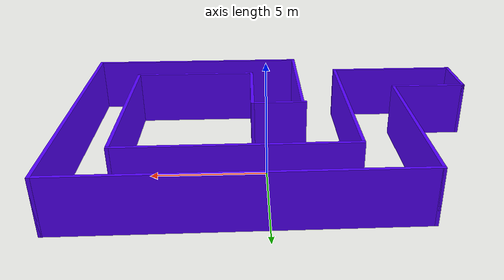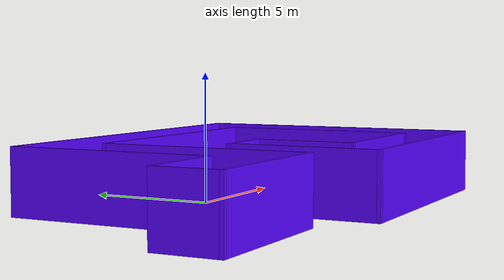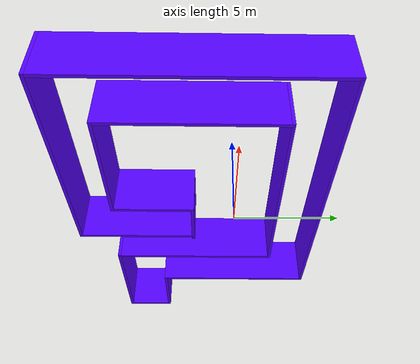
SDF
<?xml version='1.0'?>
<sdf version='1.6'>
  <model name='Building2'>
    <pose frame=''>-0.58011 -1.78618 0 0 -0 0</pose>
    <link name='Wall_0'>
      <collision name='Wall_0_Collision'>
        <geometry>
          <box>
            <size>2.5 0.15 2.5</size>
          </box>
        </geometry>
        <pose frame=''>0 0 1.25 0 -0 0</pose>
      </collision>
      <visual name='Wall_0_Visual'>
        <pose frame=''>0 0 1.25 0 -0 0</pose>
        <geometry>
          <box>
            <size>2.5 0.15 2.5</size>
          </box>
        </geometry>
        <material>
          <script>
            <uri>file://media/materials/scripts/gazebo.material</uri>
            <name>Gazebo/Grey</name>
          </script>
          <ambient>0.333333 0 1 1</ambient>
        </material>
      </visual>
      <pose frame=''>-0.060855 -0.224134 0 0 -0 0</pose>
    </link>
    <link name='Wall_1'>
      <collision name='Wall_1_Collision'>
        <geometry>
          <box>
            <size>3.95171 0.15 2.5</size>
          </box>
        </geometry>
        <pose frame=''>0 0 1.25 0 -0 0</pose>
      </collision>
      <visual name='Wall_1_Visual'>
        <pose frame=''>0 0 1.25 0 -0 0</pose>
        <geometry>
          <box>
            <size>3.95171 0.15 2.5</size>
          </box>
        </geometry>
        <material>
          <script>
            <uri>file://media/materials/scripts/gazebo.material</uri>
            <name>Gazebo/Grey</name>
          </script>
          <ambient>0.333333 0 1 1</ambient>
        </material>
      </visual>
      <pose frame=''>1.12335 -2.12457 0 0 0 -1.56993</pose>
    </link>
    <link name='Wall_10'>
      <collision name='Wall_10_Collision'>
        <geometry>
          <box>
            <size>14.75 0.15 2.5</size>
          </box>
        </geometry>
        <pose frame=''>0 0 1.25 0 -0 0</pose>
      </collision>
      <visual name='Wall_10_Visual'>
        <pose frame=''>0 0 1.25 0 -0 0</pose>
        <geometry>
          <box>
            <size>14.75 0.15 2.5</size>
          </box>
        </geometry>
        <material>
          <script>
            <uri>file://media/materials/scripts/gazebo.material</uri>
            <name>Gazebo/Grey</name>
          </script>
          <ambient>0.333333 0 1 1</ambient>
        </material>
      </visual>
      <pose frame=''>1.675 5.925 0 0 -0 0</pose>
    </link>
    <link name='Wall_11'>
      <collision name='Wall_11_Collision'>
        <geometry>
          <box>
            <size>12 0.15 2.5</size>
          </box>
        </geometry>
        <pose frame=''>0 0 1.25 0 -0 0</pose>
      </collision>
      <visual name='Wall_11_Visual'>
        <pose frame=''>0 0 1.25 0 -0 0</pose>
        <geometry>
          <box>
            <size>12 0.15 2.5</size>
          </box>
        </geometry>
        <material>
          <script>
            <uri>file://media/materials/scripts/gazebo.material</uri>
            <name>Gazebo/Grey</name>
          </script>
          <ambient>0.333333 0 1 1</ambient>
        </material>
      </visual>
      <pose frame=''>8.975 0 0 0 0 -1.5708</pose>
    </link>
    <link name='Wall_12'>
      <collision name='Wall_12_Collision'>
        <geometry>
          <box>
            <size>10.25 0.15 2.5</size>
          </box>
        </geometry>
        <pose frame=''>0 0 1.25 0 -0 0</pose>
      </collision>
      <visual name='Wall_12_Visual'>
        <pose frame=''>0 0 1.25 0 -0 0</pose>
        <geometry>
          <box>
            <size>10.25 0.15 2.5</size>
          </box>
        </geometry>
        <material>
          <script>
            <uri>file://media/materials/scripts/gazebo.material</uri>
            <name>Gazebo/Grey</name>
          </script>
          <ambient>0.333333 0 1 1</ambient>
        </material>
      </visual>
      <pose frame=''>3.925 -5.925 0 0 -0 3.14159</pose>
    </link>
    <link name='Wall_13'>
      <collision name='Wall_13_Collision'>
        <geometry>
          <box>
            <size>5.75 0.15 2.5</size>
          </box>
        </geometry>
        <pose frame=''>0 0 1.25 0 -0 0</pose>
      </collision>
      <visual name='Wall_13_Visual'>
        <pose frame=''>0 0 1.25 0 -0 0</pose>
        <geometry>
          <box>
            <size>5.75 0.15 2.5</size>
          </box>
        </geometry>
        <material>
          <script>
            <uri>file://media/materials/scripts/gazebo.material</uri>
            <name>Gazebo/Grey</name>
          </script>
          <ambient>0.333333 0 1 1</ambient>
        </material>
      </visual>
      <pose frame=''>-1.125 -3.125 0 0 -0 1.5708</pose>
    </link>
    <link name='Wall_2'>
      <collision name='Wall_2_Collision'>
        <geometry>
          <box>
            <size>5.75 0.15 2.5</size>
          </box>
        </geometry>
        <pose frame=''>0 0 1.25 0 -0 0</pose>
      </collision>
      <visual name='Wall_2_Visual'>
        <pose frame=''>0 0 1.25 0 -0 0</pose>
        <geometry>
          <box>
            <size>5.75 0.15 2.5</size>
          </box>
        </geometry>
        <material>
          <script>
            <uri>file://media/materials/scripts/gazebo.material</uri>
            <name>Gazebo/Grey</name>
          </script>
          <ambient>0.333333 0 1 1</ambient>
        </material>
      </visual>
      <pose frame=''>3.925 -4.025 0 0 -0 0</pose>
    </link>
    <link name='Wall_3'>
      <collision name='Wall_3_Collision'>
        <geometry>
          <box>
            <size>8 0.15 2.5</size>
          </box>
        </geometry>
        <pose frame=''>0 0 1.25 0 -0 0</pose>
      </collision>
      <visual name='Wall_3_Visual'>
        <pose frame=''>0 0 1.25 0 -0 0</pose>
        <geometry>
          <box>
            <size>8 0.15 2.5</size>
          </box>
        </geometry>
        <material>
          <script>
            <uri>file://media/materials/scripts/gazebo.material</uri>
            <name>Gazebo/Grey</name>
          </script>
          <ambient>0.333333 0 1 1</ambient>
        </material>
      </visual>
      <pose frame=''>6.725 -0.1 0 0 -0 1.5708</pose>
    </link>
    <link name='Wall_4'>
      <collision name='Wall_4_Collision'>
        <geometry>
          <box>
            <size>10 0.15 2.5</size>
          </box>
        </geometry>
        <pose frame=''>0 0 1.25 0 -0 0</pose>
      </collision>
      <visual name='Wall_4_Visual'>
        <pose frame=''>0 0 1.25 0 -0 0</pose>
        <geometry>
          <box>
            <size>10 0.15 2.5</size>
          </box>
        </geometry>
        <material>
          <script>
            <uri>file://media/materials/scripts/gazebo.material</uri>
            <name>Gazebo/Grey</name>
          </script>
          <ambient>0.333333 0 1 1</ambient>
        </material>
      </visual>
      <pose frame=''>1.8 3.825 0 0 -0 3.14159</pose>
    </link>
    <link name='Wall_5'>
      <collision name='Wall_5_Collision'>
        <geometry>
          <box>
            <size>8.25 0.15 2.5</size>
          </box>
        </geometry>
        <pose frame=''>0 0 1.25 0 -0 0</pose>
      </collision>
      <visual name='Wall_5_Visual'>
        <pose frame=''>0 0 1.25 0 -0 0</pose>
        <geometry>
          <box>
            <size>8.25 0.15 2.5</size>
          </box>
        </geometry>
        <material>
          <script>
            <uri>file://media/materials/scripts/gazebo.material</uri>
            <name>Gazebo/Grey</name>
          </script>
          <ambient>0.333333 0 1 1</ambient>
        </material>
      </visual>
      <pose frame=''>-3.125 -0.225 0 0 0 -1.5708</pose>
    </link>
    <link name='Wall_6'>
      <collision name='Wall_6_Collision'>
        <geometry>
          <box>
            <size>6 0.15 2.5</size>
          </box>
        </geometry>
        <pose frame=''>0 0 1.25 0 -0 0</pose>
      </collision>
      <visual name='Wall_6_Visual'>
        <pose frame=''>0 0 1.25 0 -0 0</pose>
        <geometry>
          <box>
            <size>6 0.15 2.5</size>
          </box>
        </geometry>
        <material>
          <script>
            <uri>file://media/materials/scripts/gazebo.material</uri>
            <name>Gazebo/Grey</name>
          </script>
          <ambient>0.333333 0 1 1</ambient>
        </material>
      </visual>
      <pose frame=''>-6.05 -4.275 0 0 -0 3.14159</pose>
    </link>
    <link name='Wall_7'>
      <collision name='Wall_7_Collision'>
        <geometry>
          <box>
            <size>2.5 0.15 2.5</size>
          </box>
        </geometry>
        <pose frame=''>0 0 1.25 0 -0 0</pose>
      </collision>
      <visual name='Wall_7_Visual'>
        <pose frame=''>0 0 1.25 0 -0 0</pose>
        <geometry>
          <box>
            <size>2.5 0.15 2.5</size>
          </box>
        </geometry>
        <material>
          <script>
            <uri>file://media/materials/scripts/gazebo.material</uri>
            <name>Gazebo/Grey</name>
          </script>
          <ambient>0.333333 0 1 1</ambient>
        </material>
      </visual>
      <pose frame=''>-8.975 -3.1 0 0 -0 1.5708</pose>
    </link>
    <link name='Wall_8'>
      <collision name='Wall_8_Collision'>
        <geometry>
          <box>
            <size>3.5 0.15 2.5</size>
          </box>
        </geometry>
        <pose frame=''>0 0 1.25 0 -0 0</pose>
      </collision>
      <visual name='Wall_8_Visual'>
        <pose frame=''>0 0 1.25 0 -0 0</pose>
        <geometry>
          <box>
            <size>3.5 0.15 2.5</size>
          </box>
        </geometry>
        <material>
          <script>
            <uri>file://media/materials/scripts/gazebo.material</uri>
            <name>Gazebo/Grey</name>
          </script>
          <ambient>0.333333 0 1 1</ambient>
        </material>
      </visual>
      <pose frame=''>-7.3 -1.925 0 0 -0 0</pose>
    </link>
    <link name='Wall_9'>
      <collision name='Wall_9_Collision'>
        <geometry>
          <box>
            <size>8 0.15 2.5</size>
          </box>
        </geometry>
        <pose frame=''>0 0 1.25 0 -0 0</pose>
      </collision>
      <visual name='Wall_9_Visual'>
        <pose frame=''>0 0 1.25 0 -0 0</pose>
        <geometry>
          <box>
            <size>8 0.15 2.5</size>
          </box>
        </geometry>
        <material>
          <script>
            <uri>file://media/materials/scripts/gazebo.material</uri>
            <name>Gazebo/Grey</name>
          </script>
          <ambient>0.333333 0 1 1</ambient>
        </material>
      </visual>
      <pose frame=''>-5.625 2 0 0 -0 1.5708</pose>
    </link>
    <static>1</static>
  </model>
</sdf>
